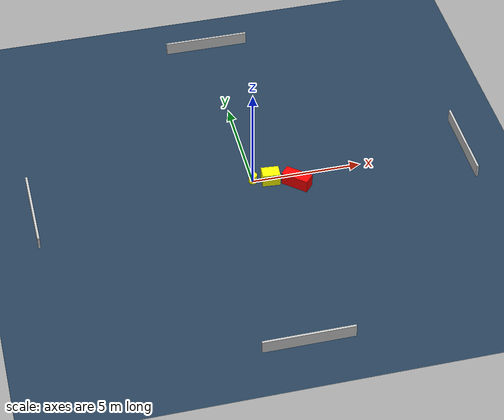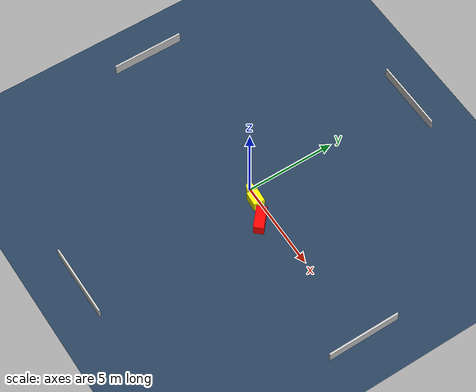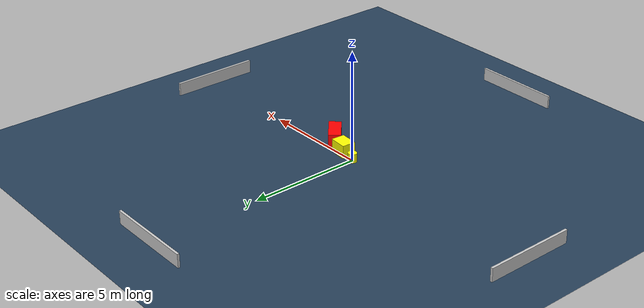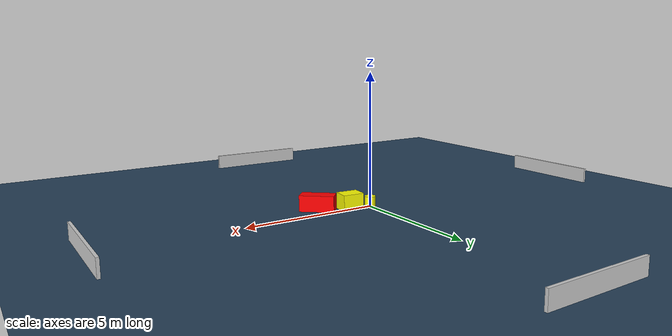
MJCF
<?xml version="1.0" ?>
<mujoco model="generated_environment">
  <option timestep="0.01" integrator="RK4" cone="elliptic"/>
  <default>
    <geom density="1"/>
  </default>
  <asset>
    <texture builtin="gradient" height="3072" name="skybox" rgb1="0.3 0.5 0.7" rgb2="0 0 0" type="skybox" width="512"/>
    <texture builtin="checker" height="300" name="groundplane" rgb1="0.2 0.3 0.4" rgb2="0.1 0.2 0.3" type="2d" width="300"/>
    <material name="groundplane" reflectance="0.2" texrepeat="5 5" texture="groundplane"/>
  </asset>
  <worldbody>
    <light dir="0 0 -1" directional="true" pos="0 0 1.5"/>
    <geom condim="3" friction="0.5 0.005 0.001" material="groundplane" name="floor" pos="0 0 0" size="0 0 0.05" type="plane"/>
    <body name="walls">
      <geom name="wall_1" condim="4" pos="-10.0 0.0 0.3" rgba="0.800000011920929 0.800000011920929 0.800000011920929 1.0" size="0.05 2.0 0.3" type="box"/>
      <geom name="wall_2" condim="4" pos="10.0 0.0 0.3" rgba="0.800000011920929 0.800000011920929 0.800000011920929 1.0" size="0.05 2.0 0.3" type="box"/>
      <geom name="wall_3" condim="4" pos="0.0 -10.0 0.3" rgba="0.800000011920929 0.800000011920929 0.800000011920929 1.0" size="2.0 0.05 0.3" type="box"/>
      <geom name="wall_4" condim="4" pos="0.0 10.0 0.3" rgba="0.800000011920929 0.800000011920929 0.800000011920929 1.0" size="2.0 0.05 0.3" type="box"/>
    </body>
    <body name="robot">
      <joint name="joint_x" type="slide" pos="0 0 0" axis="1 0 0"/>
      <joint name="joint_y" type="slide" pos="0 0 0" axis="0 1 0"/>
      <geom name="robot" type="cylinder" pos="0.0 0.0 0.2" size="0.2 0.2 0.0" mass="5.0" friction="1.0 0.005 0.0001" condim="4" rgba="1.0 1.0 0.0 1.0"/>
    </body>
    <body name="obstacle_1_movable">
      <geom name="obstacle_1_movable" condim="4" pos="0.7834365487711682 -0.16282008569503476 0.3" euler="0 0 85.4557597217826" friction="0.0 0.005 0.001" rgba="1.0 1.0 0.0 1.0" size="0.3089746586185706 0.40517027060127553 0.3" type="box" mass="0.1"/>
      <joint type="free"/>
    </body>
    <body name="obstacle_2_static">
      <geom name="obstacle_2_static" condim="4" pos="1.8944520647053786 -0.6201945992216134 0.3" euler="0 0 318.82414662765746" friction="0.0 0.005 0.001" rgba="1.0 0.0 0.0 1.0" size="0.640609899428149 0.27823739534567316 0.3" type="box"/>
    </body>
  </worldbody>
  <actuator>
    <motor name="actuator_x" joint="joint_x" gear="1" ctrlrange="-1 1"/>
    <motor name="actuator_y" joint="joint_y" gear="1" ctrlrange="-1 1"/>
  </actuator>
</mujoco>
